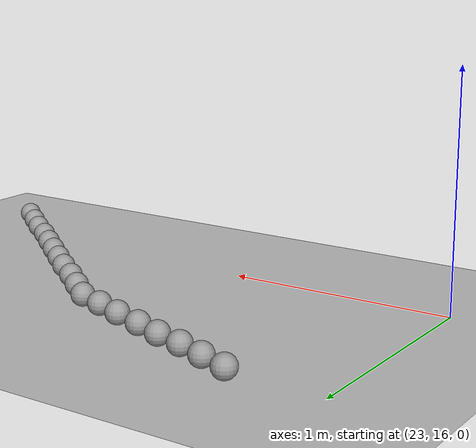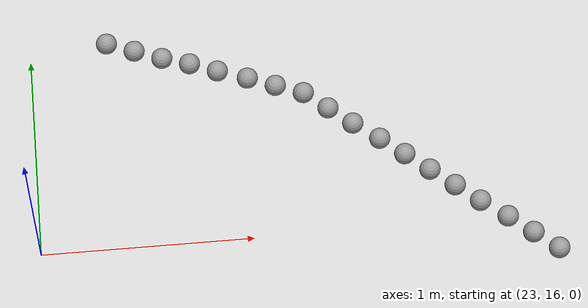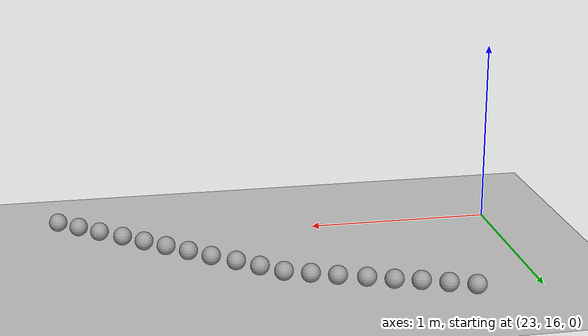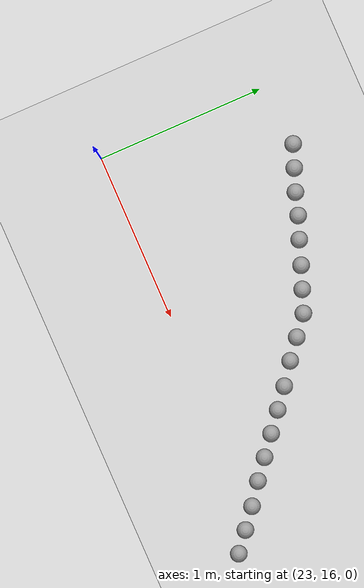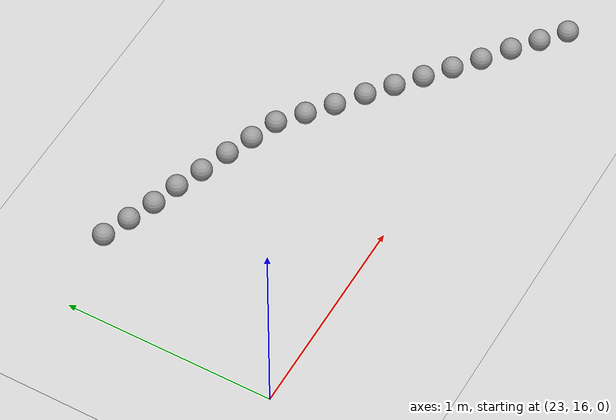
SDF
<sdf version="1.6">
 <world name="default">
  <model name="ground_plane">
   <static>1</static>
   <link name="link">
    <collision name="collision">
     <geometry><plane><normal>0 0 1</normal><size>100 100</size></plane></geometry>
     <surface><friction><ode><mu>100</mu><mu2>50</mu2></ode></friction></surface>
    </collision>
    <visual name="visual">
     <cast_shadows>0</cast_shadows>
     <geometry><plane><normal>0 0 1</normal><size>100 100</size></plane></geometry>
     <material>
      <script><uri>file://media/materials/scripts/gazebo.material</uri><name>Gazebo/Grey</name></script>
     </material>
    </visual>
   </link>
  </model>
  <model name="unit_sphere_0_193">
   <pose>23.370000 17.050000 0.050000 0 -0 0</pose>
   <link name="link">
    <inertial>
     <mass>1</mass>
     <inertia><ixx>0.1</ixx><ixy>0</ixy><ixz>0</ixz><iyy>0.1</iyy><iyz>0</iyz><izz>0.1</izz></inertia>
    </inertial>
    <collision name="collision"><geometry><sphere><radius>0.050000</radius></sphere></geometry></collision>
    <visual name="visual">
     <geometry><sphere><radius>0.050000</radius></sphere></geometry>
     <material>
      <script><name>Gazebo/Grey</name><uri>file://media/materials/scripts/gazebo.material</uri></script>
     </material>
    </visual>
   </link>
  </model>
  <model name="unit_sphere_0_194">
   <pose>23.500000 17.000000 0.050000 0 -0 0</pose>
   <link name="link">
    <inertial>
     <mass>1</mass>
     <inertia><ixx>0.1</ixx><ixy>0</ixy><ixz>0</ixz><iyy>0.1</iyy><iyz>0</iyz><izz>0.1</izz></inertia>
    </inertial>
    <collision name="collision"><geometry><sphere><radius>0.050000</radius></sphere></geometry></collision>
    <visual name="visual">
     <geometry><sphere><radius>0.050000</radius></sphere></geometry>
     <material>
      <script><name>Gazebo/Grey</name><uri>file://media/materials/scripts/gazebo.material</uri></script>
     </material>
    </visual>
   </link>
  </model>
  <model name="unit_sphere_0_195">
   <pose>23.630000 16.950000 0.050000 0 -0 0</pose>
   <link name="link">
    <inertial>
     <mass>1</mass>
     <inertia><ixx>0.1</ixx><ixy>0</ixy><ixz>0</ixz><iyy>0.1</iyy><iyz>0</iyz><izz>0.1</izz></inertia>
    </inertial>
    <collision name="collision"><geometry><sphere><radius>0.050000</radius></sphere></geometry></collision>
    <visual name="visual">
     <geometry><sphere><radius>0.050000</radius></sphere></geometry>
     <material>
      <script><name>Gazebo/Grey</name><uri>file://media/materials/scripts/gazebo.material</uri></script>
     </material>
    </visual>
   </link>
  </model>
  <model name="unit_sphere_0_196">
   <pose>23.760000 16.910000 0.050000 0 -0 0</pose>
   <link name="link">
    <inertial>
     <mass>1</mass>
     <inertia><ixx>0.1</ixx><ixy>0</ixy><ixz>0</ixz><iyy>0.1</iyy><iyz>0</iyz><izz>0.1</izz></inertia>
    </inertial>
    <collision name="collision"><geometry><sphere><radius>0.050000</radius></sphere></geometry></collision>
    <visual name="visual">
     <geometry><sphere><radius>0.050000</radius></sphere></geometry>
     <material>
      <script><name>Gazebo/Grey</name><uri>file://media/materials/scripts/gazebo.material</uri></script>
     </material>
    </visual>
   </link>
  </model>
  <model name="unit_sphere_0_197">
   <pose>23.890000 16.860000 0.050000 0 -0 0</pose>
   <link name="link">
    <inertial>
     <mass>1</mass>
     <inertia><ixx>0.1</ixx><ixy>0</ixy><ixz>0</ixz><iyy>0.1</iyy><iyz>0</iyz><izz>0.1</izz></inertia>
    </inertial>
    <collision name="collision"><geometry><sphere><radius>0.050000</radius></sphere></geometry></collision>
    <visual name="visual">
     <geometry><sphere><radius>0.050000</radius></sphere></geometry>
     <material>
      <script><name>Gazebo/Grey</name><uri>file://media/materials/scripts/gazebo.material</uri></script>
     </material>
    </visual>
   </link>
  </model>
  <model name="unit_sphere_0_198">
   <pose>24.030000 16.810000 0.050000 0 -0 0</pose>
   <link name="link">
    <inertial>
     <mass>1</mass>
     <inertia><ixx>0.1</ixx><ixy>0</ixy><ixz>0</ixz><iyy>0.1</iyy><iyz>0</iyz><izz>0.1</izz></inertia>
    </inertial>
    <collision name="collision"><geometry><sphere><radius>0.050000</radius></sphere></geometry></collision>
    <visual name="visual">
     <geometry><sphere><radius>0.050000</radius></sphere></geometry>
     <material>
      <script><name>Gazebo/Grey</name><uri>file://media/materials/scripts/gazebo.material</uri></script>
     </material>
    </visual>
   </link>
  </model>
  <model name="unit_sphere_0_199">
   <pose>24.160000 16.760000 0.050000 0 -0 0</pose>
   <link name="link">
    <inertial>
     <mass>1</mass>
     <inertia><ixx>0.1</ixx><ixy>0</ixy><ixz>0</ixz><iyy>0.1</iyy><iyz>0</iyz><izz>0.1</izz></inertia>
    </inertial>
    <collision name="collision"><geometry><sphere><radius>0.050000</radius></sphere></geometry></collision>
    <visual name="visual">
     <geometry><sphere><radius>0.050000</radius></sphere></geometry>
     <material>
      <script><name>Gazebo/Grey</name><uri>file://media/materials/scripts/gazebo.material</uri></script>
     </material>
    </visual>
   </link>
  </model>
  <model name="unit_sphere_0_200">
   <pose>24.290000 16.710000 0.050000 0 -0 0</pose>
   <link name="link">
    <inertial>
     <mass>1</mass>
     <inertia><ixx>0.1</ixx><ixy>0</ixy><ixz>0</ixz><iyy>0.1</iyy><iyz>0</iyz><izz>0.1</izz></inertia>
    </inertial>
    <collision name="collision"><geometry><sphere><radius>0.050000</radius></sphere></geometry></collision>
    <visual name="visual">
     <geometry><sphere><radius>0.050000</radius></sphere></geometry>
     <material>
      <script><name>Gazebo/Grey</name><uri>file://media/materials/scripts/gazebo.material</uri></script>
     </material>
    </visual>
   </link>
  </model>
  <model name="unit_sphere_0_201">
   <pose>24.400000 16.620000 0.050000 0 -0 0</pose>
   <link name="link">
    <inertial>
     <mass>1</mass>
     <inertia><ixx>0.1</ixx><ixy>0</ixy><ixz>0</ixz><iyy>0.1</iyy><iyz>0</iyz><izz>0.1</izz></inertia>
    </inertial>
    <collision name="collision"><geometry><sphere><radius>0.050000</radius></sphere></geometry></collision>
    <visual name="visual">
     <geometry><sphere><radius>0.050000</radius></sphere></geometry>
     <material>
      <script><name>Gazebo/Grey</name><uri>file://media/materials/scripts/gazebo.material</uri></script>
     </material>
    </visual>
   </link>
  </model>
  <model name="unit_sphere_0_202">
   <pose>24.510000 16.530000 0.050000 0 -0 0</pose>
   <link name="link">
    <inertial>
     <mass>1</mass>
     <inertia><ixx>0.1</ixx><ixy>0</ixy><ixz>0</ixz><iyy>0.1</iyy><iyz>0</iyz><izz>0.1</izz></inertia>
    </inertial>
    <collision name="collision"><geometry><sphere><radius>0.050000</radius></sphere></geometry></collision>
    <visual name="visual">
     <geometry><sphere><radius>0.050000</radius></sphere></geometry>
     <material>
      <script><name>Gazebo/Grey</name><uri>file://media/materials/scripts/gazebo.material</uri></script>
     </material>
    </visual>
   </link>
  </model>
  <model name="unit_sphere_0_203">
   <pose>24.630000 16.440000 0.050000 0 -0 0</pose>
   <link name="link">
    <inertial>
     <mass>1</mass>
     <inertia><ixx>0.1</ixx><ixy>0</ixy><ixz>0</ixz><iyy>0.1</iyy><iyz>0</iyz><izz>0.1</izz></inertia>
    </inertial>
    <collision name="collision"><geometry><sphere><radius>0.050000</radius></sphere></geometry></collision>
    <visual name="visual">
     <geometry><sphere><radius>0.050000</radius></sphere></geometry>
     <material>
      <script><name>Gazebo/Grey</name><uri>file://media/materials/scripts/gazebo.material</uri></script>
     </material>
    </visual>
   </link>
  </model>
  <model name="unit_sphere_0_204">
   <pose>24.740000 16.350000 0.050000 0 -0 0</pose>
   <link name="link">
    <inertial>
     <mass>1</mass>
     <inertia><ixx>0.1</ixx><ixy>0</ixy><ixz>0</ixz><iyy>0.1</iyy><iyz>0</iyz><izz>0.1</izz></inertia>
    </inertial>
    <collision name="collision"><geometry><sphere><radius>0.050000</radius></sphere></geometry></collision>
    <visual name="visual">
     <geometry><sphere><radius>0.050000</radius></sphere></geometry>
     <material>
      <script><name>Gazebo/Grey</name><uri>file://media/materials/scripts/gazebo.material</uri></script>
     </material>
    </visual>
   </link>
  </model>
  <model name="unit_sphere_0_205">
   <pose>24.850000 16.260000 0.050000 0 -0 0</pose>
   <link name="link">
    <inertial>
     <mass>1</mass>
     <inertia><ixx>0.1</ixx><ixy>0</ixy><ixz>0</ixz><iyy>0.1</iyy><iyz>0</iyz><izz>0.1</izz></inertia>
    </inertial>
    <collision name="collision"><geometry><sphere><radius>0.050000</radius></sphere></geometry></collision>
    <visual name="visual">
     <geometry><sphere><radius>0.050000</radius></sphere></geometry>
     <material>
      <script><name>Gazebo/Grey</name><uri>file://media/materials/scripts/gazebo.material</uri></script>
     </material>
    </visual>
   </link>
  </model>
  <model name="unit_sphere_0_206">
   <pose>24.960000 16.170000 0.050000 0 -0 0</pose>
   <link name="link">
    <inertial>
     <mass>1</mass>
     <inertia><ixx>0.1</ixx><ixy>0</ixy><ixz>0</ixz><iyy>0.1</iyy><iyz>0</iyz><izz>0.1</izz></inertia>
    </inertial>
    <collision name="collision"><geometry><sphere><radius>0.050000</radius></sphere></geometry></collision>
    <visual name="visual">
     <geometry><sphere><radius>0.050000</radius></sphere></geometry>
     <material>
      <script><name>Gazebo/Grey</name><uri>file://media/materials/scripts/gazebo.material</uri></script>
     </material>
    </visual>
   </link>
  </model>
  <model name="unit_sphere_0_207">
   <pose>25.070000 16.080000 0.050000 0 -0 0</pose>
   <link name="link">
    <inertial>
     <mass>1</mass>
     <inertia><ixx>0.1</ixx><ixy>0</ixy><ixz>0</ixz><iyy>0.1</iyy><iyz>0</iyz><izz>0.1</izz></inertia>
    </inertial>
    <collision name="collision"><geometry><sphere><radius>0.050000</radius></sphere></geometry></collision>
    <visual name="visual">
     <geometry><sphere><radius>0.050000</radius></sphere></geometry>
     <material>
      <script><name>Gazebo/Grey</name><uri>file://media/materials/scripts/gazebo.material</uri></script>
     </material>
    </visual>
   </link>
  </model>
  <model name="unit_sphere_0_208">
   <pose>25.190000 15.990000 0.050000 0 -0 0</pose>
   <link name="link">
    <inertial>
     <mass>1</mass>
     <inertia><ixx>0.1</ixx><ixy>0</ixy><ixz>0</ixz><iyy>0.1</iyy><iyz>0</iyz><izz>0.1</izz></inertia>
    </inertial>
    <collision name="collision"><geometry><sphere><radius>0.050000</radius></sphere></geometry></collision>
    <visual name="visual">
     <geometry><sphere><radius>0.050000</radius></sphere></geometry>
     <material>
      <script><name>Gazebo/Grey</name><uri>file://media/materials/scripts/gazebo.material</uri></script>
     </material>
    </visual>
   </link>
  </model>
  <model name="unit_sphere_0_209">
   <pose>25.300000 15.900000 0.050000 0 -0 0</pose>
   <link name="link">
    <inertial>
     <mass>1</mass>
     <inertia><ixx>0.1</ixx><ixy>0</ixy><ixz>0</ixz><iyy>0.1</iyy><iyz>0</iyz><izz>0.1</izz></inertia>
    </inertial>
    <collision name="collision"><geometry><sphere><radius>0.050000</radius></sphere></geometry></collision>
    <visual name="visual">
     <geometry><sphere><radius>0.050000</radius></sphere></geometry>
     <material>
      <script><name>Gazebo/Grey</name><uri>file://media/materials/scripts/gazebo.material</uri></script>
     </material>
    </visual>
   </link>
  </model>
  <model name="unit_sphere_0_210">
   <pose>25.410000 15.810000 0.050000 0 -0 0</pose>
   <link name="link">
    <inertial>
     <mass>1</mass>
     <inertia><ixx>0.1</ixx><ixy>0</ixy><ixz>0</ixz><iyy>0.1</iyy><iyz>0</iyz><izz>0.1</izz></inertia>
    </inertial>
    <collision name="collision"><geometry><sphere><radius>0.050000</radius></sphere></geometry></collision>
    <visual name="visual">
     <geometry><sphere><radius>0.050000</radius></sphere></geometry>
     <material>
      <script><name>Gazebo/Grey</name><uri>file://media/materials/scripts/gazebo.material</uri></script>
     </material>
    </visual>
   </link>
  </model>
 </world>
</sdf>
